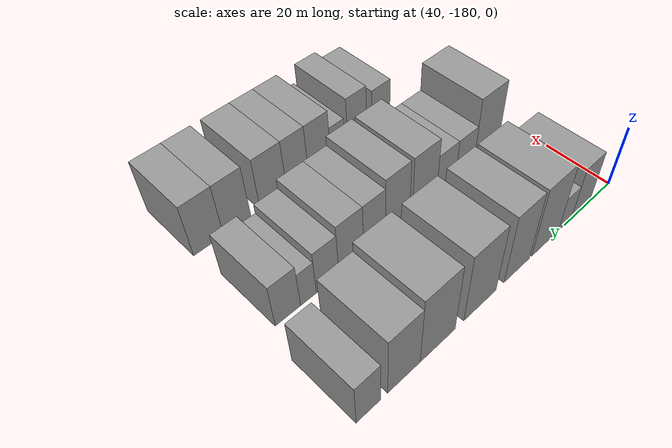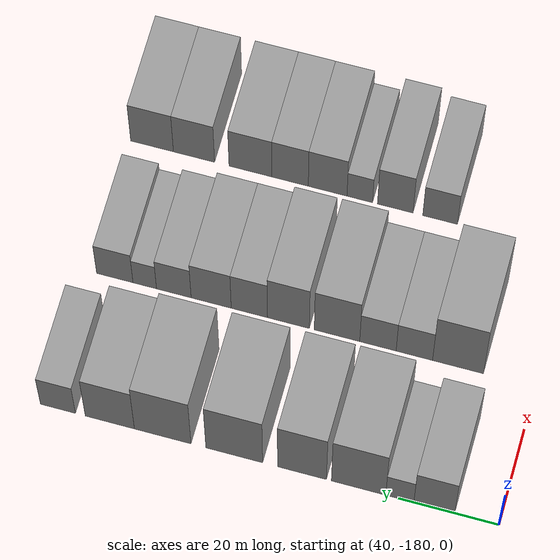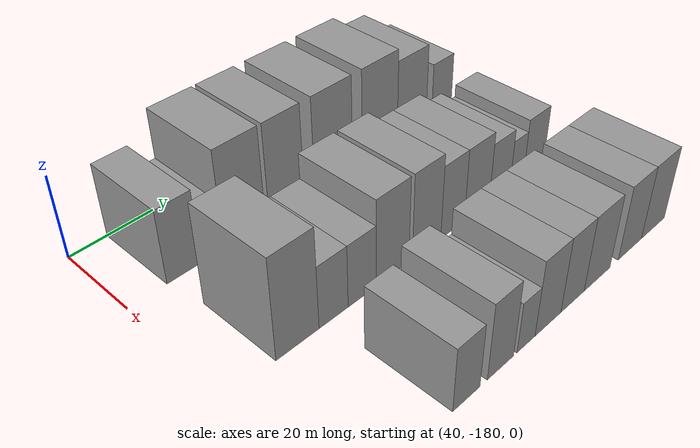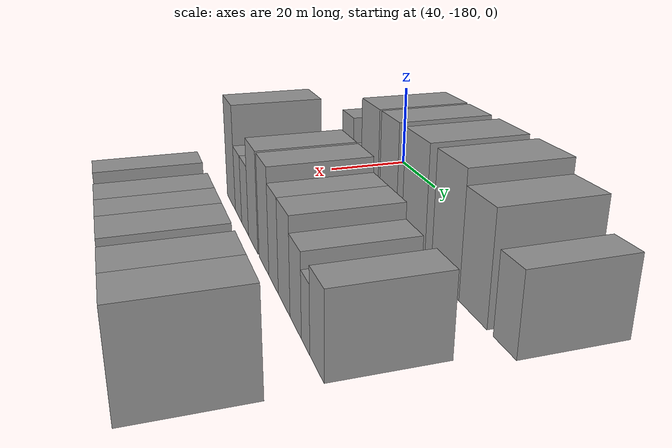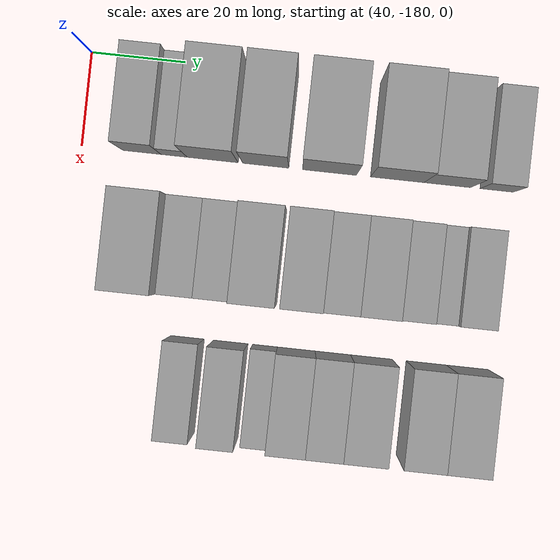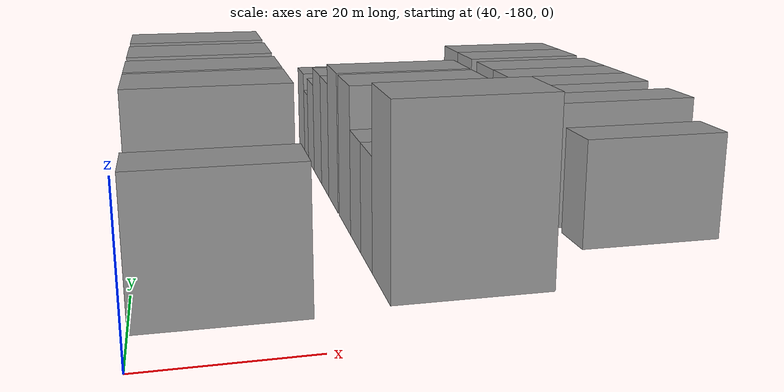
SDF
<sdf version="1.6">
 <world name="default">
  <model name="building_20">
   <static>1</static>
   <pose>50.0000 -167.0960 0 0.000000 0.000000 0.000000</pose>
   <link name="link">
    <pose>0 0 9.00 0 0 0</pose>
    <collision name="collision"><geometry><box><size>20.0000 8.1327 18.0000</size></box></geometry></collision>
    <visual name="visual">
     <cast_shadows>0</cast_shadows>
     <geometry><box><size>20.0000 8.1327 18.0000</size></box></geometry>
     <material>
      <script>
       <uri>model://grey_wall/materials/scripts</uri>
       <uri>model://grey_wall/materials/textures</uri>
       <name>vrc/grey_wall</name>
      </script>
     </material>
    </visual>
   </link>
  </model>
  <model name="building_21">
   <static>1</static>
   <pose>50.0000 -160.2294 0 0.000000 0.000000 0.000000</pose>
   <link name="link">
    <pose>0 0 6.00 0 0 0</pose>
    <collision name="collision"><geometry><box><size>20.0000 5.6006 12.0000</size></box></geometry></collision>
    <visual name="visual">
     <cast_shadows>0</cast_shadows>
     <geometry><box><size>20.0000 5.6006 12.0000</size></box></geometry>
     <material>
      <script>
       <uri>model://grey_wall/materials/scripts</uri>
       <uri>model://grey_wall/materials/textures</uri>
       <name>vrc/grey_wall</name>
      </script>
     </material>
    </visual>
   </link>
  </model>
  <model name="building_22">
   <static>1</static>
   <pose>50.0000 -151.9978 0 0.000000 0.000000 0.000000</pose>
   <link name="link">
    <pose>0 0 12.00 0 0 0</pose>
    <collision name="collision"><geometry><box><size>20.0000 10.8625 24.0000</size></box></geometry></collision>
    <visual name="visual">
     <cast_shadows>0</cast_shadows>
     <geometry><box><size>20.0000 10.8625 24.0000</size></box></geometry>
     <material>
      <script>
       <uri>model://grey_wall/materials/scripts</uri>
       <uri>model://grey_wall/materials/textures</uri>
       <name>vrc/grey_wall</name>
      </script>
     </material>
    </visual>
   </link>
  </model>
  <model name="building_23">
   <static>1</static>
   <pose>50.0000 -140.6740 0 0.000000 0.000000 0.000000</pose>
   <link name="link">
    <pose>0 0 12.00 0 0 0</pose>
    <collision name="collision"><geometry><box><size>20.0000 9.7850 24.0000</size></box></geometry></collision>
    <visual name="visual">
     <cast_shadows>0</cast_shadows>
     <geometry><box><size>20.0000 9.7850 24.0000</size></box></geometry>
     <material>
      <script>
       <uri>model://grey_wall/materials/scripts</uri>
       <uri>model://grey_wall/materials/textures</uri>
       <name>vrc/grey_wall</name>
      </script>
     </material>
    </visual>
   </link>
  </model>
  <model name="building_24">
   <static>1</static>
   <pose>50.0000 -127.0697 0 0.000000 0.000000 0.000000</pose>
   <link name="link">
    <pose>0 0 12.00 0 0 0</pose>
    <collision name="collision"><geometry><box><size>20.0000 11.4236 24.0000</size></box></geometry></collision>
    <visual name="visual">
     <cast_shadows>0</cast_shadows>
     <geometry><box><size>20.0000 11.4236 24.0000</size></box></geometry>
     <material>
      <script>
       <uri>model://grey_wall/materials/scripts</uri>
       <uri>model://grey_wall/materials/textures</uri>
       <name>vrc/grey_wall</name>
      </script>
     </material>
    </visual>
   </link>
  </model>
  <model name="building_25">
   <static>1</static>
   <pose>50.0000 -112.6428 0 0.000000 0.000000 0.000000</pose>
   <link name="link">
    <pose>0 0 12.00 0 0 0</pose>
    <collision name="collision"><geometry><box><size>20.0000 11.4302 24.0000</size></box></geometry></collision>
    <visual name="visual">
     <cast_shadows>0</cast_shadows>
     <geometry><box><size>20.0000 11.4302 24.0000</size></box></geometry>
     <material>
      <script>
       <uri>model://grey_wall/materials/scripts</uri>
       <uri>model://grey_wall/materials/textures</uri>
       <name>vrc/grey_wall</name>
      </script>
     </material>
    </visual>
   </link>
  </model>
  <model name="building_26">
   <static>1</static>
   <pose>50.0000 -101.9458 0 0.000000 0.000000 0.000000</pose>
   <link name="link">
    <pose>0 0 10.50 0 0 0</pose>
    <collision name="collision"><geometry><box><size>20.0000 9.9638 21.0000</size></box></geometry></collision>
    <visual name="visual">
     <cast_shadows>0</cast_shadows>
     <geometry><box><size>20.0000 9.9638 21.0000</size></box></geometry>
     <material>
      <script>
       <uri>model://grey_wall/materials/scripts</uri>
       <uri>model://grey_wall/materials/textures</uri>
       <name>vrc/grey_wall</name>
      </script>
     </material>
    </visual>
   </link>
  </model>
  <model name="building_27">
   <static>1</static>
   <pose>50.0000 -91.4111 0 0.000000 0.000000 0.000000</pose>
   <link name="link">
    <pose>0 0 7.50 0 0 0</pose>
    <collision name="collision"><geometry><box><size>20.0000 7.1054 15.0000</size></box></geometry></collision>
    <visual name="visual">
     <cast_shadows>0</cast_shadows>
     <geometry><box><size>20.0000 7.1054 15.0000</size></box></geometry>
     <material>
      <script>
       <uri>model://grey_wall/materials/scripts</uri>
       <uri>model://grey_wall/materials/textures</uri>
       <name>vrc/grey_wall</name>
      </script>
     </material>
    </visual>
   </link>
  </model>
  <model name="building_92">
   <static>1</static>
   <pose>79.0000 -164.3843 0 0.000000 0.000000 0.000000</pose>
   <link name="link">
    <pose>0 0 12.00 0 0 0</pose>
    <collision name="collision"><geometry><box><size>20.0000 10.2905 24.0000</size></box></geometry></collision>
    <visual name="visual">
     <cast_shadows>0</cast_shadows>
     <geometry><box><size>20.0000 10.2905 24.0000</size></box></geometry>
     <material>
      <script>
       <uri>model://grey_wall/materials/scripts</uri>
       <uri>model://grey_wall/materials/textures</uri>
       <name>vrc/grey_wall</name>
      </script>
     </material>
    </visual>
   </link>
  </model>
  <model name="building_93">
   <static>1</static>
   <pose>79.0000 -155.5538 0 0.000000 0.000000 0.000000</pose>
   <link name="link">
    <pose>0 0 7.50 0 0 0</pose>
    <collision name="collision"><geometry><box><size>20.0000 7.3704 15.0000</size></box></geometry></collision>
    <visual name="visual">
     <cast_shadows>0</cast_shadows>
     <geometry><box><size>20.0000 7.3704 15.0000</size></box></geometry>
     <material>
      <script>
       <uri>model://grey_wall/materials/scripts</uri>
       <uri>model://grey_wall/materials/textures</uri>
       <name>vrc/grey_wall</name>
      </script>
     </material>
    </visual>
   </link>
  </model>
  <model name="building_94">
   <static>1</static>
   <pose>79.0000 -148.1777 0 0.000000 0.000000 0.000000</pose>
   <link name="link">
    <pose>0 0 7.50 0 0 0</pose>
    <collision name="collision"><geometry><box><size>20.0000 7.3819 15.0000</size></box></geometry></collision>
    <visual name="visual">
     <cast_shadows>0</cast_shadows>
     <geometry><box><size>20.0000 7.3819 15.0000</size></box></geometry>
     <material>
      <script>
       <uri>model://grey_wall/materials/scripts</uri>
       <uri>model://grey_wall/materials/textures</uri>
       <name>vrc/grey_wall</name>
      </script>
     </material>
    </visual>
   </link>
  </model>
  <model name="building_95">
   <static>1</static>
   <pose>79.0000 -139.8655 0 0.000000 0.000000 0.000000</pose>
   <link name="link">
    <pose>0 0 10.50 0 0 0</pose>
    <collision name="collision"><geometry><box><size>20.0000 9.2426 21.0000</size></box></geometry></collision>
    <visual name="visual">
     <cast_shadows>0</cast_shadows>
     <geometry><box><size>20.0000 9.2426 21.0000</size></box></geometry>
     <material>
      <script>
       <uri>model://grey_wall/materials/scripts</uri>
       <uri>model://grey_wall/materials/textures</uri>
       <name>vrc/grey_wall</name>
      </script>
     </material>
    </visual>
   </link>
  </model>
  <model name="building_96">
   <static>1</static>
   <pose>79.0000 -129.9756 0 0.000000 0.000000 0.000000</pose>
   <link name="link">
    <pose>0 0 10.50 0 0 0</pose>
    <collision name="collision"><geometry><box><size>20.0000 8.5372 21.0000</size></box></geometry></collision>
    <visual name="visual">
     <cast_shadows>0</cast_shadows>
     <geometry><box><size>20.0000 8.5372 21.0000</size></box></geometry>
     <material>
      <script>
       <uri>model://grey_wall/materials/scripts</uri>
       <uri>model://grey_wall/materials/textures</uri>
       <name>vrc/grey_wall</name>
      </script>
     </material>
    </visual>
   </link>
  </model>
  <model name="building_97">
   <static>1</static>
   <pose>79.0000 -122.0044 0 0.000000 0.000000 0.000000</pose>
   <link name="link">
    <pose>0 0 9.00 0 0 0</pose>
    <collision name="collision"><geometry><box><size>20.0000 7.4051 18.0000</size></box></geometry></collision>
    <visual name="visual">
     <cast_shadows>0</cast_shadows>
     <geometry><box><size>20.0000 7.4051 18.0000</size></box></geometry>
     <material>
      <script>
       <uri>model://grey_wall/materials/scripts</uri>
       <uri>model://grey_wall/materials/textures</uri>
       <name>vrc/grey_wall</name>
      </script>
     </material>
    </visual>
   </link>
  </model>
  <model name="building_98">
   <static>1</static>
   <pose>79.0000 -114.1997 0 0.000000 0.000000 0.000000</pose>
   <link name="link">
    <pose>0 0 9.00 0 0 0</pose>
    <collision name="collision"><geometry><box><size>20.0000 8.2044 18.0000</size></box></geometry></collision>
    <visual name="visual">
     <cast_shadows>0</cast_shadows>
     <geometry><box><size>20.0000 8.2044 18.0000</size></box></geometry>
     <material>
      <script>
       <uri>model://grey_wall/materials/scripts</uri>
       <uri>model://grey_wall/materials/textures</uri>
       <name>vrc/grey_wall</name>
      </script>
     </material>
    </visual>
   </link>
  </model>
  <model name="building_99">
   <static>1</static>
   <pose>79.0000 -106.5419 0 0.000000 0.000000 0.000000</pose>
   <link name="link">
    <pose>0 0 7.50 0 0 0</pose>
    <collision name="collision"><geometry><box><size>20.0000 7.1112 15.0000</size></box></geometry></collision>
    <visual name="visual">
     <cast_shadows>0</cast_shadows>
     <geometry><box><size>20.0000 7.1112 15.0000</size></box></geometry>
     <material>
      <script>
       <uri>model://grey_wall/materials/scripts</uri>
       <uri>model://grey_wall/materials/textures</uri>
       <name>vrc/grey_wall</name>
      </script>
     </material>
    </visual>
   </link>
  </model>
  <model name="building_100">
   <static>1</static>
   <pose>79.0000 -100.5685 0 0.000000 0.000000 0.000000</pose>
   <link name="link">
    <pose>0 0 6.00 0 0 0</pose>
    <collision name="collision"><geometry><box><size>20.0000 4.8355 12.0000</size></box></geometry></collision>
    <visual name="visual">
     <cast_shadows>0</cast_shadows>
     <geometry><box><size>20.0000 4.8355 12.0000</size></box></geometry>
     <material>
      <script>
       <uri>model://grey_wall/materials/scripts</uri>
       <uri>model://grey_wall/materials/textures</uri>
       <name>vrc/grey_wall</name>
      </script>
     </material>
    </visual>
   </link>
  </model>
  <model name="building_101">
   <static>1</static>
   <pose>79.0000 -94.4095 0 0.000000 0.000000 0.000000</pose>
   <link name="link">
    <pose>0 0 7.50 0 0 0</pose>
    <collision name="collision"><geometry><box><size>20.0000 7.4825 15.0000</size></box></geometry></collision>
    <visual name="visual">
     <cast_shadows>0</cast_shadows>
     <geometry><box><size>20.0000 7.4825 15.0000</size></box></geometry>
     <material>
      <script>
       <uri>model://grey_wall/materials/scripts</uri>
       <uri>model://grey_wall/materials/textures</uri>
       <name>vrc/grey_wall</name>
      </script>
     </material>
    </visual>
   </link>
  </model>
  <model name="building_159">
   <static>1</static>
   <pose>108.0000 -153.2808 0 0.000000 0.000000 0.000000</pose>
   <link name="link">
    <pose>0 0 7.50 0 0 0</pose>
    <collision name="collision"><geometry><box><size>20.0000 7.1233 15.0000</size></box></geometry></collision>
    <visual name="visual">
     <cast_shadows>0</cast_shadows>
     <geometry><box><size>20.0000 7.1233 15.0000</size></box></geometry>
     <material>
      <script>
       <uri>model://grey_wall/materials/scripts</uri>
       <uri>model://grey_wall/materials/textures</uri>
       <name>vrc/grey_wall</name>
      </script>
     </material>
    </visual>
   </link>
  </model>
  <model name="building_160">
   <static>1</static>
   <pose>108.0000 -144.0565 0 0.000000 0.000000 0.000000</pose>
   <link name="link">
    <pose>0 0 9.00 0 0 0</pose>
    <collision name="collision"><geometry><box><size>20.0000 7.3253 18.0000</size></box></geometry></collision>
    <visual name="visual">
     <cast_shadows>0</cast_shadows>
     <geometry><box><size>20.0000 7.3253 18.0000</size></box></geometry>
     <material>
      <script>
       <uri>model://grey_wall/materials/scripts</uri>
       <uri>model://grey_wall/materials/textures</uri>
       <name>vrc/grey_wall</name>
      </script>
     </material>
    </visual>
   </link>
  </model>
  <model name="building_161">
   <static>1</static>
   <pose>108.0000 -136.7511 0 0.000000 0.000000 0.000000</pose>
   <link name="link">
    <pose>0 0 6.00 0 0 0</pose>
    <collision name="collision"><geometry><box><size>20.0000 5.2854 12.0000</size></box></geometry></collision>
    <visual name="visual">
     <cast_shadows>0</cast_shadows>
     <geometry><box><size>20.0000 5.2854 12.0000</size></box></geometry>
     <material>
      <script>
       <uri>model://grey_wall/materials/scripts</uri>
       <uri>model://grey_wall/materials/textures</uri>
       <name>vrc/grey_wall</name>
      </script>
     </material>
    </visual>
   </link>
  </model>
  <model name="building_162">
   <static>1</static>
   <pose>108.0000 -130.1139 0 0.000000 0.000000 0.000000</pose>
   <link name="link">
    <pose>0 0 9.00 0 0 0</pose>
    <collision name="collision"><geometry><box><size>20.0000 7.9890 18.0000</size></box></geometry></collision>
    <visual name="visual">
     <cast_shadows>0</cast_shadows>
     <geometry><box><size>20.0000 7.9890 18.0000</size></box></geometry>
     <material>
      <script>
       <uri>model://grey_wall/materials/scripts</uri>
       <uri>model://grey_wall/materials/textures</uri>
       <name>vrc/grey_wall</name>
      </script>
     </material>
    </visual>
   </link>
  </model>
  <model name="building_163">
   <static>1</static>
   <pose>108.0000 -122.3391 0 0.000000 0.000000 0.000000</pose>
   <link name="link">
    <pose>0 0 9.00 0 0 0</pose>
    <collision name="collision"><geometry><box><size>20.0000 7.5606 18.0000</size></box></geometry></collision>
    <visual name="visual">
     <cast_shadows>0</cast_shadows>
     <geometry><box><size>20.0000 7.5606 18.0000</size></box></geometry>
     <material>
      <script>
       <uri>model://grey_wall/materials/scripts</uri>
       <uri>model://grey_wall/materials/textures</uri>
       <name>vrc/grey_wall</name>
      </script>
     </material>
    </visual>
   </link>
  </model>
  <model name="building_164">
   <static>1</static>
   <pose>108.0000 -114.1197 0 0.000000 0.000000 0.000000</pose>
   <link name="link">
    <pose>0 0 9.00 0 0 0</pose>
    <collision name="collision"><geometry><box><size>20.0000 8.8782 18.0000</size></box></geometry></collision>
    <visual name="visual">
     <cast_shadows>0</cast_shadows>
     <geometry><box><size>20.0000 8.8782 18.0000</size></box></geometry>
     <material>
      <script>
       <uri>model://grey_wall/materials/scripts</uri>
       <uri>model://grey_wall/materials/textures</uri>
       <name>vrc/grey_wall</name>
      </script>
     </material>
    </visual>
   </link>
  </model>
  <model name="building_165">
   <static>1</static>
   <pose>108.0000 -102.3940 0 0.000000 0.000000 0.000000</pose>
   <link name="link">
    <pose>0 0 9.00 0 0 0</pose>
    <collision name="collision"><geometry><box><size>20.0000 8.5730 18.0000</size></box></geometry></collision>
    <visual name="visual">
     <cast_shadows>0</cast_shadows>
     <geometry><box><size>20.0000 8.5730 18.0000</size></box></geometry>
     <material>
      <script>
       <uri>model://grey_wall/materials/scripts</uri>
       <uri>model://grey_wall/materials/textures</uri>
       <name>vrc/grey_wall</name>
      </script>
     </material>
    </visual>
   </link>
  </model>
  <model name="building_166">
   <static>1</static>
   <pose>108.0000 -93.6521 0 0.000000 0.000000 0.000000</pose>
   <link name="link">
    <pose>0 0 9.00 0 0 0</pose>
    <collision name="collision"><geometry><box><size>20.0000 8.9109 18.0000</size></box></geometry></collision>
    <visual name="visual">
     <cast_shadows>0</cast_shadows>
     <geometry><box><size>20.0000 8.9109 18.0000</size></box></geometry>
     <material>
      <script>
       <uri>model://grey_wall/materials/scripts</uri>
       <uri>model://grey_wall/materials/textures</uri>
       <name>vrc/grey_wall</name>
      </script>
     </material>
    </visual>
   </link>
  </model>
 </world>
</sdf>
